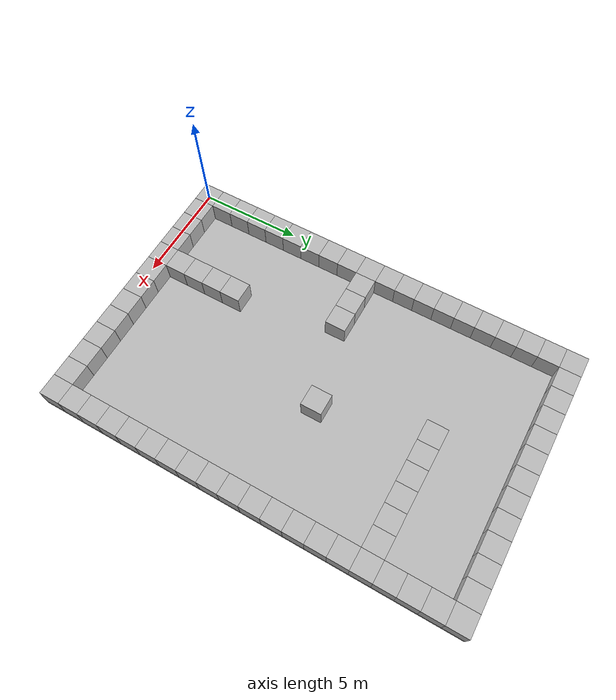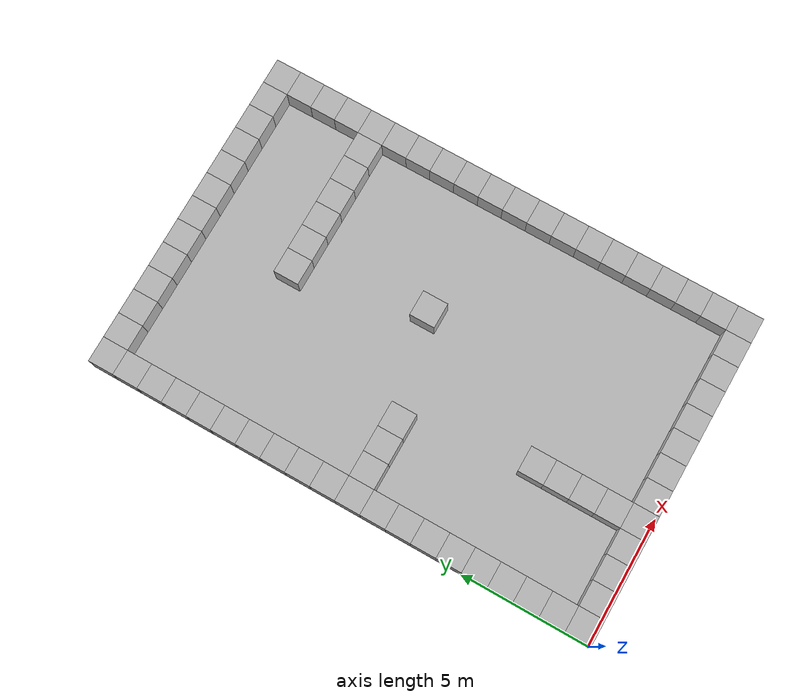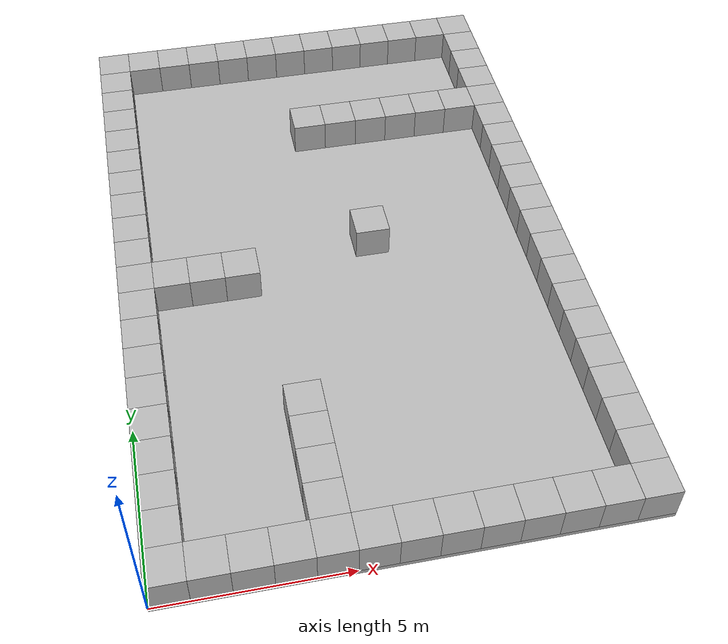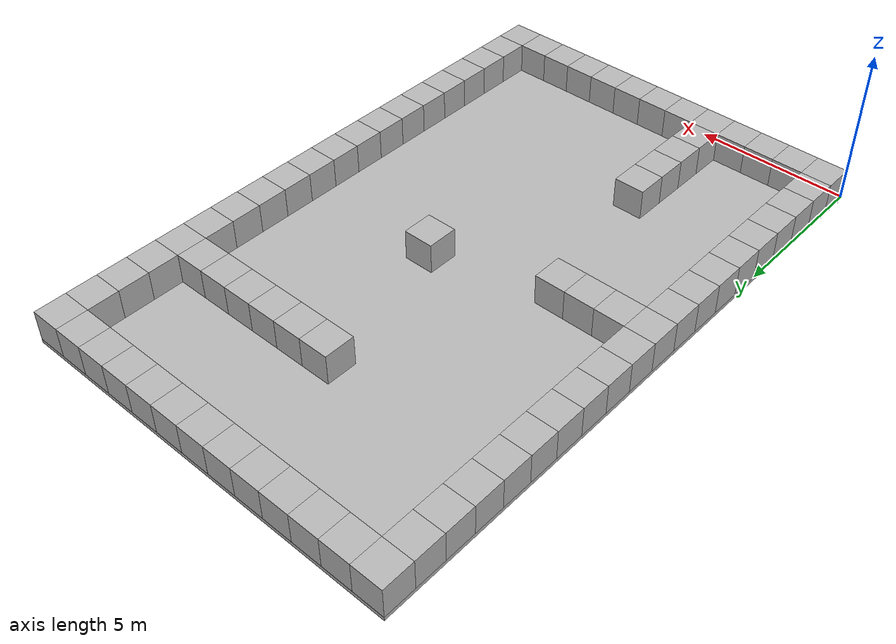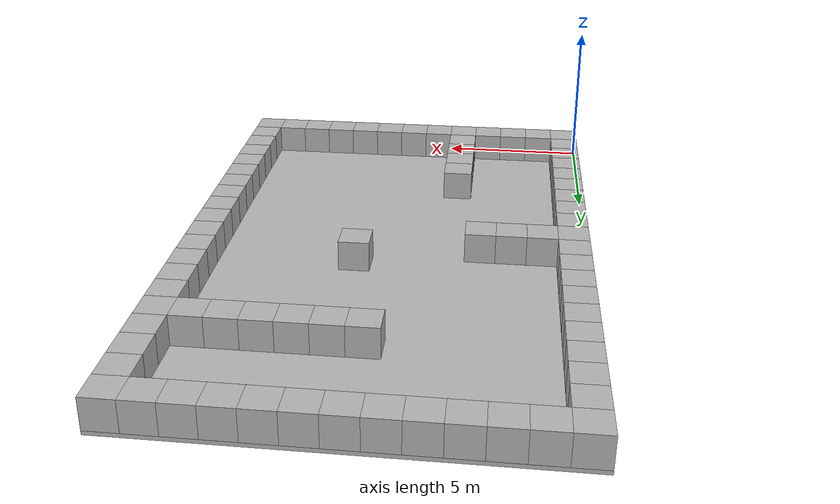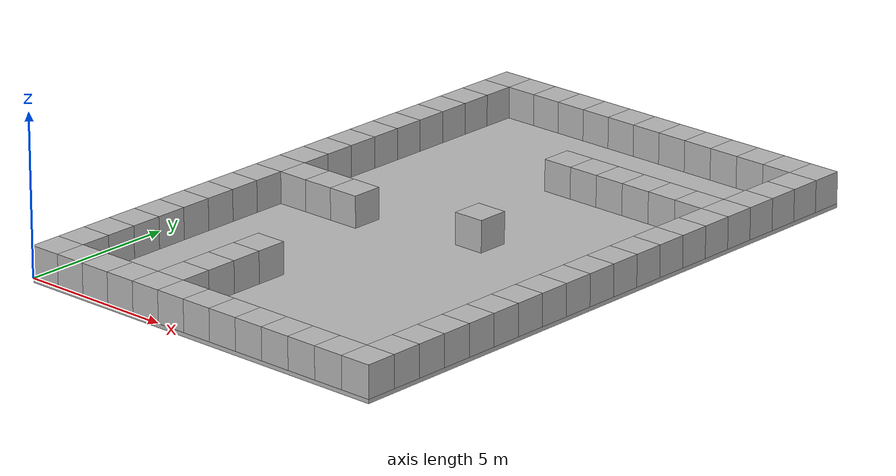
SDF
<sdf version="1.4">
 <world name="default">
  <model name="floor">
   <pose>6.5 10.0 -0.0625 0 0 0</pose>
   <static>true</static>
   <link name="link">
    <collision name="collision"><geometry><box><size>13.0 20.0 0.125</size></box></geometry></collision>
    <visual name="visual"><geometry><box><size>13.0 20.0 0.125</size></box></geometry></visual>
   </link>
  </model>
  <model name="box_0_0">
   <pose>0.5 0.5 0.5 0 0 0</pose>
   <static>true</static>
   <link name="link">
    <collision name="collision"><geometry><box><size>1.0 1.0 1.0</size></box></geometry></collision>
    <visual name="visual"><geometry><box><size>1.0 1.0 1.0</size></box></geometry></visual>
   </link>
  </model>
  <model name="box_0_1">
   <pose>0.5 1.5 0.5 0 0 0</pose>
   <static>true</static>
   <link name="link">
    <collision name="collision"><geometry><box><size>1.0 1.0 1.0</size></box></geometry></collision>
    <visual name="visual"><geometry><box><size>1.0 1.0 1.0</size></box></geometry></visual>
   </link>
  </model>
  <model name="box_0_2">
   <pose>0.5 2.5 0.5 0 0 0</pose>
   <static>true</static>
   <link name="link">
    <collision name="collision"><geometry><box><size>1.0 1.0 1.0</size></box></geometry></collision>
    <visual name="visual"><geometry><box><size>1.0 1.0 1.0</size></box></geometry></visual>
   </link>
  </model>
  <model name="box_0_3">
   <pose>0.5 3.5 0.5 0 0 0</pose>
   <static>true</static>
   <link name="link">
    <collision name="collision"><geometry><box><size>1.0 1.0 1.0</size></box></geometry></collision>
    <visual name="visual"><geometry><box><size>1.0 1.0 1.0</size></box></geometry></visual>
   </link>
  </model>
  <model name="box_0_4">
   <pose>0.5 4.5 0.5 0 0 0</pose>
   <static>true</static>
   <link name="link">
    <collision name="collision"><geometry><box><size>1.0 1.0 1.0</size></box></geometry></collision>
    <visual name="visual"><geometry><box><size>1.0 1.0 1.0</size></box></geometry></visual>
   </link>
  </model>
  <model name="box_0_5">
   <pose>0.5 5.5 0.5 0 0 0</pose>
   <static>true</static>
   <link name="link">
    <collision name="collision"><geometry><box><size>1.0 1.0 1.0</size></box></geometry></collision>
    <visual name="visual"><geometry><box><size>1.0 1.0 1.0</size></box></geometry></visual>
   </link>
  </model>
  <model name="box_0_6">
   <pose>0.5 6.5 0.5 0 0 0</pose>
   <static>true</static>
   <link name="link">
    <collision name="collision"><geometry><box><size>1.0 1.0 1.0</size></box></geometry></collision>
    <visual name="visual"><geometry><box><size>1.0 1.0 1.0</size></box></geometry></visual>
   </link>
  </model>
  <model name="box_0_7">
   <pose>0.5 7.5 0.5 0 0 0</pose>
   <static>true</static>
   <link name="link">
    <collision name="collision"><geometry><box><size>1.0 1.0 1.0</size></box></geometry></collision>
    <visual name="visual"><geometry><box><size>1.0 1.0 1.0</size></box></geometry></visual>
   </link>
  </model>
  <model name="box_0_8">
   <pose>0.5 8.5 0.5 0 0 0</pose>
   <static>true</static>
   <link name="link">
    <collision name="collision"><geometry><box><size>1.0 1.0 1.0</size></box></geometry></collision>
    <visual name="visual"><geometry><box><size>1.0 1.0 1.0</size></box></geometry></visual>
   </link>
  </model>
  <model name="box_0_9">
   <pose>0.5 9.5 0.5 0 0 0</pose>
   <static>true</static>
   <link name="link">
    <collision name="collision"><geometry><box><size>1.0 1.0 1.0</size></box></geometry></collision>
    <visual name="visual"><geometry><box><size>1.0 1.0 1.0</size></box></geometry></visual>
   </link>
  </model>
  <model name="box_0_10">
   <pose>0.5 10.5 0.5 0 0 0</pose>
   <static>true</static>
   <link name="link">
    <collision name="collision"><geometry><box><size>1.0 1.0 1.0</size></box></geometry></collision>
    <visual name="visual"><geometry><box><size>1.0 1.0 1.0</size></box></geometry></visual>
   </link>
  </model>
  <model name="box_0_11">
   <pose>0.5 11.5 0.5 0 0 0</pose>
   <static>true</static>
   <link name="link">
    <collision name="collision"><geometry><box><size>1.0 1.0 1.0</size></box></geometry></collision>
    <visual name="visual"><geometry><box><size>1.0 1.0 1.0</size></box></geometry></visual>
   </link>
  </model>
  <model name="box_0_12">
   <pose>0.5 12.5 0.5 0 0 0</pose>
   <static>true</static>
   <link name="link">
    <collision name="collision"><geometry><box><size>1.0 1.0 1.0</size></box></geometry></collision>
    <visual name="visual"><geometry><box><size>1.0 1.0 1.0</size></box></geometry></visual>
   </link>
  </model>
  <model name="box_0_13">
   <pose>0.5 13.5 0.5 0 0 0</pose>
   <static>true</static>
   <link name="link">
    <collision name="collision"><geometry><box><size>1.0 1.0 1.0</size></box></geometry></collision>
    <visual name="visual"><geometry><box><size>1.0 1.0 1.0</size></box></geometry></visual>
   </link>
  </model>
  <model name="box_0_14">
   <pose>0.5 14.5 0.5 0 0 0</pose>
   <static>true</static>
   <link name="link">
    <collision name="collision"><geometry><box><size>1.0 1.0 1.0</size></box></geometry></collision>
    <visual name="visual"><geometry><box><size>1.0 1.0 1.0</size></box></geometry></visual>
   </link>
  </model>
  <model name="box_0_15">
   <pose>0.5 15.5 0.5 0 0 0</pose>
   <static>true</static>
   <link name="link">
    <collision name="collision"><geometry><box><size>1.0 1.0 1.0</size></box></geometry></collision>
    <visual name="visual"><geometry><box><size>1.0 1.0 1.0</size></box></geometry></visual>
   </link>
  </model>
  <model name="box_0_16">
   <pose>0.5 16.5 0.5 0 0 0</pose>
   <static>true</static>
   <link name="link">
    <collision name="collision"><geometry><box><size>1.0 1.0 1.0</size></box></geometry></collision>
    <visual name="visual"><geometry><box><size>1.0 1.0 1.0</size></box></geometry></visual>
   </link>
  </model>
  <model name="box_0_17">
   <pose>0.5 17.5 0.5 0 0 0</pose>
   <static>true</static>
   <link name="link">
    <collision name="collision"><geometry><box><size>1.0 1.0 1.0</size></box></geometry></collision>
    <visual name="visual"><geometry><box><size>1.0 1.0 1.0</size></box></geometry></visual>
   </link>
  </model>
  <model name="box_0_18">
   <pose>0.5 18.5 0.5 0 0 0</pose>
   <static>true</static>
   <link name="link">
    <collision name="collision"><geometry><box><size>1.0 1.0 1.0</size></box></geometry></collision>
    <visual name="visual"><geometry><box><size>1.0 1.0 1.0</size></box></geometry></visual>
   </link>
  </model>
  <model name="box_0_19">
   <pose>0.5 19.5 0.5 0 0 0</pose>
   <static>true</static>
   <link name="link">
    <collision name="collision"><geometry><box><size>1.0 1.0 1.0</size></box></geometry></collision>
    <visual name="visual"><geometry><box><size>1.0 1.0 1.0</size></box></geometry></visual>
   </link>
  </model>
  <model name="box_1_0">
   <pose>1.5 0.5 0.5 0 0 0</pose>
   <static>true</static>
   <link name="link">
    <collision name="collision"><geometry><box><size>1.0 1.0 1.0</size></box></geometry></collision>
    <visual name="visual"><geometry><box><size>1.0 1.0 1.0</size></box></geometry></visual>
   </link>
  </model>
  <model name="box_1_9">
   <pose>1.5 9.5 0.5 0 0 0</pose>
   <static>true</static>
   <link name="link">
    <collision name="collision"><geometry><box><size>1.0 1.0 1.0</size></box></geometry></collision>
    <visual name="visual"><geometry><box><size>1.0 1.0 1.0</size></box></geometry></visual>
   </link>
  </model>
  <model name="box_1_19">
   <pose>1.5 19.5 0.5 0 0 0</pose>
   <static>true</static>
   <link name="link">
    <collision name="collision"><geometry><box><size>1.0 1.0 1.0</size></box></geometry></collision>
    <visual name="visual"><geometry><box><size>1.0 1.0 1.0</size></box></geometry></visual>
   </link>
  </model>
  <model name="box_2_0">
   <pose>2.5 0.5 0.5 0 0 0</pose>
   <static>true</static>
   <link name="link">
    <collision name="collision"><geometry><box><size>1.0 1.0 1.0</size></box></geometry></collision>
    <visual name="visual"><geometry><box><size>1.0 1.0 1.0</size></box></geometry></visual>
   </link>
  </model>
  <model name="box_2_9">
   <pose>2.5 9.5 0.5 0 0 0</pose>
   <static>true</static>
   <link name="link">
    <collision name="collision"><geometry><box><size>1.0 1.0 1.0</size></box></geometry></collision>
    <visual name="visual"><geometry><box><size>1.0 1.0 1.0</size></box></geometry></visual>
   </link>
  </model>
  <model name="box_2_19">
   <pose>2.5 19.5 0.5 0 0 0</pose>
   <static>true</static>
   <link name="link">
    <collision name="collision"><geometry><box><size>1.0 1.0 1.0</size></box></geometry></collision>
    <visual name="visual"><geometry><box><size>1.0 1.0 1.0</size></box></geometry></visual>
   </link>
  </model>
  <model name="box_3_0">
   <pose>3.5 0.5 0.5 0 0 0</pose>
   <static>true</static>
   <link name="link">
    <collision name="collision"><geometry><box><size>1.0 1.0 1.0</size></box></geometry></collision>
    <visual name="visual"><geometry><box><size>1.0 1.0 1.0</size></box></geometry></visual>
   </link>
  </model>
  <model name="box_3_9">
   <pose>3.5 9.5 0.5 0 0 0</pose>
   <static>true</static>
   <link name="link">
    <collision name="collision"><geometry><box><size>1.0 1.0 1.0</size></box></geometry></collision>
    <visual name="visual"><geometry><box><size>1.0 1.0 1.0</size></box></geometry></visual>
   </link>
  </model>
  <model name="box_3_19">
   <pose>3.5 19.5 0.5 0 0 0</pose>
   <static>true</static>
   <link name="link">
    <collision name="collision"><geometry><box><size>1.0 1.0 1.0</size></box></geometry></collision>
    <visual name="visual"><geometry><box><size>1.0 1.0 1.0</size></box></geometry></visual>
   </link>
  </model>
  <model name="box_4_0">
   <pose>4.5 0.5 0.5 0 0 0</pose>
   <static>true</static>
   <link name="link">
    <collision name="collision"><geometry><box><size>1.0 1.0 1.0</size></box></geometry></collision>
    <visual name="visual"><geometry><box><size>1.0 1.0 1.0</size></box></geometry></visual>
   </link>
  </model>
  <model name="box_4_1">
   <pose>4.5 1.5 0.5 0 0 0</pose>
   <static>true</static>
   <link name="link">
    <collision name="collision"><geometry><box><size>1.0 1.0 1.0</size></box></geometry></collision>
    <visual name="visual"><geometry><box><size>1.0 1.0 1.0</size></box></geometry></visual>
   </link>
  </model>
  <model name="box_4_2">
   <pose>4.5 2.5 0.5 0 0 0</pose>
   <static>true</static>
   <link name="link">
    <collision name="collision"><geometry><box><size>1.0 1.0 1.0</size></box></geometry></collision>
    <visual name="visual"><geometry><box><size>1.0 1.0 1.0</size></box></geometry></visual>
   </link>
  </model>
  <model name="box_4_3">
   <pose>4.5 3.5 0.5 0 0 0</pose>
   <static>true</static>
   <link name="link">
    <collision name="collision"><geometry><box><size>1.0 1.0 1.0</size></box></geometry></collision>
    <visual name="visual"><geometry><box><size>1.0 1.0 1.0</size></box></geometry></visual>
   </link>
  </model>
  <model name="box_4_4">
   <pose>4.5 4.5 0.5 0 0 0</pose>
   <static>true</static>
   <link name="link">
    <collision name="collision"><geometry><box><size>1.0 1.0 1.0</size></box></geometry></collision>
    <visual name="visual"><geometry><box><size>1.0 1.0 1.0</size></box></geometry></visual>
   </link>
  </model>
  <model name="box_4_19">
   <pose>4.5 19.5 0.5 0 0 0</pose>
   <static>true</static>
   <link name="link">
    <collision name="collision"><geometry><box><size>1.0 1.0 1.0</size></box></geometry></collision>
    <visual name="visual"><geometry><box><size>1.0 1.0 1.0</size></box></geometry></visual>
   </link>
  </model>
  <model name="box_5_0">
   <pose>5.5 0.5 0.5 0 0 0</pose>
   <static>true</static>
   <link name="link">
    <collision name="collision"><geometry><box><size>1.0 1.0 1.0</size></box></geometry></collision>
    <visual name="visual"><geometry><box><size>1.0 1.0 1.0</size></box></geometry></visual>
   </link>
  </model>
  <model name="box_5_19">
   <pose>5.5 19.5 0.5 0 0 0</pose>
   <static>true</static>
   <link name="link">
    <collision name="collision"><geometry><box><size>1.0 1.0 1.0</size></box></geometry></collision>
    <visual name="visual"><geometry><box><size>1.0 1.0 1.0</size></box></geometry></visual>
   </link>
  </model>
  <model name="box_6_0">
   <pose>6.5 0.5 0.5 0 0 0</pose>
   <static>true</static>
   <link name="link">
    <collision name="collision"><geometry><box><size>1.0 1.0 1.0</size></box></geometry></collision>
    <visual name="visual"><geometry><box><size>1.0 1.0 1.0</size></box></geometry></visual>
   </link>
  </model>
  <model name="box_6_15">
   <pose>6.5 15.5 0.5 0 0 0</pose>
   <static>true</static>
   <link name="link">
    <collision name="collision"><geometry><box><size>1.0 1.0 1.0</size></box></geometry></collision>
    <visual name="visual"><geometry><box><size>1.0 1.0 1.0</size></box></geometry></visual>
   </link>
  </model>
  <model name="box_6_19">
   <pose>6.5 19.5 0.5 0 0 0</pose>
   <static>true</static>
   <link name="link">
    <collision name="collision"><geometry><box><size>1.0 1.0 1.0</size></box></geometry></collision>
    <visual name="visual"><geometry><box><size>1.0 1.0 1.0</size></box></geometry></visual>
   </link>
  </model>
  <model name="box_7_0">
   <pose>7.5 0.5 0.5 0 0 0</pose>
   <static>true</static>
   <link name="link">
    <collision name="collision"><geometry><box><size>1.0 1.0 1.0</size></box></geometry></collision>
    <visual name="visual"><geometry><box><size>1.0 1.0 1.0</size></box></geometry></visual>
   </link>
  </model>
  <model name="box_7_10">
   <pose>7.5 10.5 0.5 0 0 0</pose>
   <static>true</static>
   <link name="link">
    <collision name="collision"><geometry><box><size>1.0 1.0 1.0</size></box></geometry></collision>
    <visual name="visual"><geometry><box><size>1.0 1.0 1.0</size></box></geometry></visual>
   </link>
  </model>
  <model name="box_7_15">
   <pose>7.5 15.5 0.5 0 0 0</pose>
   <static>true</static>
   <link name="link">
    <collision name="collision"><geometry><box><size>1.0 1.0 1.0</size></box></geometry></collision>
    <visual name="visual"><geometry><box><size>1.0 1.0 1.0</size></box></geometry></visual>
   </link>
  </model>
  <model name="box_7_19">
   <pose>7.5 19.5 0.5 0 0 0</pose>
   <static>true</static>
   <link name="link">
    <collision name="collision"><geometry><box><size>1.0 1.0 1.0</size></box></geometry></collision>
    <visual name="visual"><geometry><box><size>1.0 1.0 1.0</size></box></geometry></visual>
   </link>
  </model>
  <model name="box_8_0">
   <pose>8.5 0.5 0.5 0 0 0</pose>
   <static>true</static>
   <link name="link">
    <collision name="collision"><geometry><box><size>1.0 1.0 1.0</size></box></geometry></collision>
    <visual name="visual"><geometry><box><size>1.0 1.0 1.0</size></box></geometry></visual>
   </link>
  </model>
  <model name="box_8_15">
   <pose>8.5 15.5 0.5 0 0 0</pose>
   <static>true</static>
   <link name="link">
    <collision name="collision"><geometry><box><size>1.0 1.0 1.0</size></box></geometry></collision>
    <visual name="visual"><geometry><box><size>1.0 1.0 1.0</size></box></geometry></visual>
   </link>
  </model>
  <model name="box_8_19">
   <pose>8.5 19.5 0.5 0 0 0</pose>
   <static>true</static>
   <link name="link">
    <collision name="collision"><geometry><box><size>1.0 1.0 1.0</size></box></geometry></collision>
    <visual name="visual"><geometry><box><size>1.0 1.0 1.0</size></box></geometry></visual>
   </link>
  </model>
  <model name="box_9_0">
   <pose>9.5 0.5 0.5 0 0 0</pose>
   <static>true</static>
   <link name="link">
    <collision name="collision"><geometry><box><size>1.0 1.0 1.0</size></box></geometry></collision>
    <visual name="visual"><geometry><box><size>1.0 1.0 1.0</size></box></geometry></visual>
   </link>
  </model>
  <model name="box_9_15">
   <pose>9.5 15.5 0.5 0 0 0</pose>
   <static>true</static>
   <link name="link">
    <collision name="collision"><geometry><box><size>1.0 1.0 1.0</size></box></geometry></collision>
    <visual name="visual"><geometry><box><size>1.0 1.0 1.0</size></box></geometry></visual>
   </link>
  </model>
  <model name="box_9_19">
   <pose>9.5 19.5 0.5 0 0 0</pose>
   <static>true</static>
   <link name="link">
    <collision name="collision"><geometry><box><size>1.0 1.0 1.0</size></box></geometry></collision>
    <visual name="visual"><geometry><box><size>1.0 1.0 1.0</size></box></geometry></visual>
   </link>
  </model>
  <model name="box_10_0">
   <pose>10.5 0.5 0.5 0 0 0</pose>
   <static>true</static>
   <link name="link">
    <collision name="collision"><geometry><box><size>1.0 1.0 1.0</size></box></geometry></collision>
    <visual name="visual"><geometry><box><size>1.0 1.0 1.0</size></box></geometry></visual>
   </link>
  </model>
  <model name="box_10_15">
   <pose>10.5 15.5 0.5 0 0 0</pose>
   <static>true</static>
   <link name="link">
    <collision name="collision"><geometry><box><size>1.0 1.0 1.0</size></box></geometry></collision>
    <visual name="visual"><geometry><box><size>1.0 1.0 1.0</size></box></geometry></visual>
   </link>
  </model>
  <model name="box_10_19">
   <pose>10.5 19.5 0.5 0 0 0</pose>
   <static>true</static>
   <link name="link">
    <collision name="collision"><geometry><box><size>1.0 1.0 1.0</size></box></geometry></collision>
    <visual name="visual"><geometry><box><size>1.0 1.0 1.0</size></box></geometry></visual>
   </link>
  </model>
  <model name="box_11_0">
   <pose>11.5 0.5 0.5 0 0 0</pose>
   <static>true</static>
   <link name="link">
    <collision name="collision"><geometry><box><size>1.0 1.0 1.0</size></box></geometry></collision>
    <visual name="visual"><geometry><box><size>1.0 1.0 1.0</size></box></geometry></visual>
   </link>
  </model>
  <model name="box_11_15">
   <pose>11.5 15.5 0.5 0 0 0</pose>
   <static>true</static>
   <link name="link">
    <collision name="collision"><geometry><box><size>1.0 1.0 1.0</size></box></geometry></collision>
    <visual name="visual"><geometry><box><size>1.0 1.0 1.0</size></box></geometry></visual>
   </link>
  </model>
  <model name="box_11_19">
   <pose>11.5 19.5 0.5 0 0 0</pose>
   <static>true</static>
   <link name="link">
    <collision name="collision"><geometry><box><size>1.0 1.0 1.0</size></box></geometry></collision>
    <visual name="visual"><geometry><box><size>1.0 1.0 1.0</size></box></geometry></visual>
   </link>
  </model>
  <model name="box_12_0">
   <pose>12.5 0.5 0.5 0 0 0</pose>
   <static>true</static>
   <link name="link">
    <collision name="collision"><geometry><box><size>1.0 1.0 1.0</size></box></geometry></collision>
    <visual name="visual"><geometry><box><size>1.0 1.0 1.0</size></box></geometry></visual>
   </link>
  </model>
  <model name="box_12_1">
   <pose>12.5 1.5 0.5 0 0 0</pose>
   <static>true</static>
   <link name="link">
    <collision name="collision"><geometry><box><size>1.0 1.0 1.0</size></box></geometry></collision>
    <visual name="visual"><geometry><box><size>1.0 1.0 1.0</size></box></geometry></visual>
   </link>
  </model>
  <model name="box_12_2">
   <pose>12.5 2.5 0.5 0 0 0</pose>
   <static>true</static>
   <link name="link">
    <collision name="collision"><geometry><box><size>1.0 1.0 1.0</size></box></geometry></collision>
    <visual name="visual"><geometry><box><size>1.0 1.0 1.0</size></box></geometry></visual>
   </link>
  </model>
  <model name="box_12_3">
   <pose>12.5 3.5 0.5 0 0 0</pose>
   <static>true</static>
   <link name="link">
    <collision name="collision"><geometry><box><size>1.0 1.0 1.0</size></box></geometry></collision>
    <visual name="visual"><geometry><box><size>1.0 1.0 1.0</size></box></geometry></visual>
   </link>
  </model>
  <model name="box_12_4">
   <pose>12.5 4.5 0.5 0 0 0</pose>
   <static>true</static>
   <link name="link">
    <collision name="collision"><geometry><box><size>1.0 1.0 1.0</size></box></geometry></collision>
    <visual name="visual"><geometry><box><size>1.0 1.0 1.0</size></box></geometry></visual>
   </link>
  </model>
  <model name="box_12_5">
   <pose>12.5 5.5 0.5 0 0 0</pose>
   <static>true</static>
   <link name="link">
    <collision name="collision"><geometry><box><size>1.0 1.0 1.0</size></box></geometry></collision>
    <visual name="visual"><geometry><box><size>1.0 1.0 1.0</size></box></geometry></visual>
   </link>
  </model>
  <model name="box_12_6">
   <pose>12.5 6.5 0.5 0 0 0</pose>
   <static>true</static>
   <link name="link">
    <collision name="collision"><geometry><box><size>1.0 1.0 1.0</size></box></geometry></collision>
    <visual name="visual"><geometry><box><size>1.0 1.0 1.0</size></box></geometry></visual>
   </link>
  </model>
  <model name="box_12_7">
   <pose>12.5 7.5 0.5 0 0 0</pose>
   <static>true</static>
   <link name="link">
    <collision name="collision"><geometry><box><size>1.0 1.0 1.0</size></box></geometry></collision>
    <visual name="visual"><geometry><box><size>1.0 1.0 1.0</size></box></geometry></visual>
   </link>
  </model>
  <model name="box_12_8">
   <pose>12.5 8.5 0.5 0 0 0</pose>
   <static>true</static>
   <link name="link">
    <collision name="collision"><geometry><box><size>1.0 1.0 1.0</size></box></geometry></collision>
    <visual name="visual"><geometry><box><size>1.0 1.0 1.0</size></box></geometry></visual>
   </link>
  </model>
  <model name="box_12_9">
   <pose>12.5 9.5 0.5 0 0 0</pose>
   <static>true</static>
   <link name="link">
    <collision name="collision"><geometry><box><size>1.0 1.0 1.0</size></box></geometry></collision>
    <visual name="visual"><geometry><box><size>1.0 1.0 1.0</size></box></geometry></visual>
   </link>
  </model>
  <model name="box_12_10">
   <pose>12.5 10.5 0.5 0 0 0</pose>
   <static>true</static>
   <link name="link">
    <collision name="collision"><geometry><box><size>1.0 1.0 1.0</size></box></geometry></collision>
    <visual name="visual"><geometry><box><size>1.0 1.0 1.0</size></box></geometry></visual>
   </link>
  </model>
  <model name="box_12_11">
   <pose>12.5 11.5 0.5 0 0 0</pose>
   <static>true</static>
   <link name="link">
    <collision name="collision"><geometry><box><size>1.0 1.0 1.0</size></box></geometry></collision>
    <visual name="visual"><geometry><box><size>1.0 1.0 1.0</size></box></geometry></visual>
   </link>
  </model>
  <model name="box_12_12">
   <pose>12.5 12.5 0.5 0 0 0</pose>
   <static>true</static>
   <link name="link">
    <collision name="collision"><geometry><box><size>1.0 1.0 1.0</size></box></geometry></collision>
    <visual name="visual"><geometry><box><size>1.0 1.0 1.0</size></box></geometry></visual>
   </link>
  </model>
  <model name="box_12_13">
   <pose>12.5 13.5 0.5 0 0 0</pose>
   <static>true</static>
   <link name="link">
    <collision name="collision"><geometry><box><size>1.0 1.0 1.0</size></box></geometry></collision>
    <visual name="visual"><geometry><box><size>1.0 1.0 1.0</size></box></geometry></visual>
   </link>
  </model>
  <model name="box_12_14">
   <pose>12.5 14.5 0.5 0 0 0</pose>
   <static>true</static>
   <link name="link">
    <collision name="collision"><geometry><box><size>1.0 1.0 1.0</size></box></geometry></collision>
    <visual name="visual"><geometry><box><size>1.0 1.0 1.0</size></box></geometry></visual>
   </link>
  </model>
  <model name="box_12_15">
   <pose>12.5 15.5 0.5 0 0 0</pose>
   <static>true</static>
   <link name="link">
    <collision name="collision"><geometry><box><size>1.0 1.0 1.0</size></box></geometry></collision>
    <visual name="visual"><geometry><box><size>1.0 1.0 1.0</size></box></geometry></visual>
   </link>
  </model>
  <model name="box_12_16">
   <pose>12.5 16.5 0.5 0 0 0</pose>
   <static>true</static>
   <link name="link">
    <collision name="collision"><geometry><box><size>1.0 1.0 1.0</size></box></geometry></collision>
    <visual name="visual"><geometry><box><size>1.0 1.0 1.0</size></box></geometry></visual>
   </link>
  </model>
  <model name="box_12_17">
   <pose>12.5 17.5 0.5 0 0 0</pose>
   <static>true</static>
   <link name="link">
    <collision name="collision"><geometry><box><size>1.0 1.0 1.0</size></box></geometry></collision>
    <visual name="visual"><geometry><box><size>1.0 1.0 1.0</size></box></geometry></visual>
   </link>
  </model>
  <model name="box_12_18">
   <pose>12.5 18.5 0.5 0 0 0</pose>
   <static>true</static>
   <link name="link">
    <collision name="collision"><geometry><box><size>1.0 1.0 1.0</size></box></geometry></collision>
    <visual name="visual"><geometry><box><size>1.0 1.0 1.0</size></box></geometry></visual>
   </link>
  </model>
  <model name="box_12_19">
   <pose>12.5 19.5 0.5 0 0 0</pose>
   <static>true</static>
   <link name="link">
    <collision name="collision"><geometry><box><size>1.0 1.0 1.0</size></box></geometry></collision>
    <visual name="visual"><geometry><box><size>1.0 1.0 1.0</size></box></geometry></visual>
   </link>
  </model>
 </world>
</sdf>
